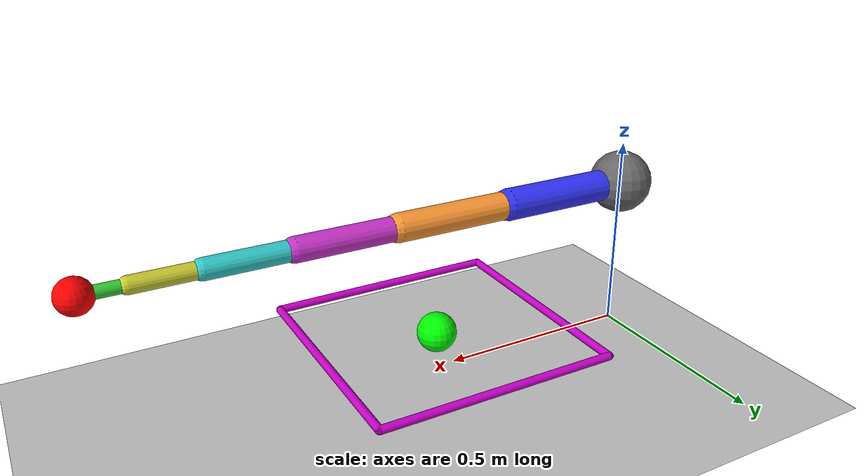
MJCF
<mujoco model="simple_arm">
    <compiler angle="degree"/>

    <option gravity="0 0 0"/>

    <worldbody>
        <light pos="0 0 3"/>

        <geom
            name="floor"
            type="plane"
            size="5 5 0.1"
            rgba="0.8 0.8 0.8 1"
        />

        <!-- Purple rectangle outline marking reachable target area (0.6x0.6 centered at 0.55, 0) -->
        <!-- Bottom edge: X from 0.25 to 0.85, Y=-0.3 -->
        <geom
            name="area_edge_bottom"
            type="capsule"
            fromto="0.25 -0.3 0.1 0.85 -0.3 0.1"
            size="0.01"
            rgba="0.8 0 0.8 1"
            contype="0"
            conaffinity="0"
        />
        <!-- Top edge: X from 0.25 to 0.85, Y=0.3 -->
        <geom
            name="area_edge_top"
            type="capsule"
            fromto="0.25 0.3 0.1 0.85 0.3 0.1"
            size="0.01"
            rgba="0.8 0 0.8 1"
            contype="0"
            conaffinity="0"
        />
        <!-- Left edge: Y from -0.3 to 0.3, X=0.25 -->
        <geom
            name="area_edge_left"
            type="capsule"
            fromto="0.25 -0.3 0.1 0.25 0.3 0.1"
            size="0.01"
            rgba="0.8 0 0.8 1"
            contype="0"
            conaffinity="0"
        />
        <!-- Right edge: Y from -0.3 to 0.3, X=0.85 -->
        <geom
            name="area_edge_right"
            type="capsule"
            fromto="0.85 -0.3 0.1 0.85 0.3 0.1"
            size="0.01"
            rgba="0.8 0 0.8 1"
            contype="0"
            conaffinity="0"
        />

        <!-- Green target marker (free body so it can move) -->
        <body name="target" pos="0.55 0 0.1">
            <joint name="target_free" type="free"/>
            <geom
                name="target_marker"
                type="sphere"
                size="0.05"
                rgba="0 1 0 1"
                contype="0"
                conaffinity="0"
            />
        </body>

        <!-- Robot base -->
        <body name="base" pos="0 0 0.4">
            <geom
                name="base_geom"
                type="sphere"
                size="0.08"
                rgba="0.4 0.4 0.4 1"
            />

            <body name="link1" pos="0 0 0">
                <joint name="joint1" type="hinge" axis="0 0 1"
                       range="-90 90" damping="1.0" armature="0.1"/>
                <geom name="link1_geom" type="capsule"
                      fromto="0 0 0 0.35 0 0" size="0.04"
                      rgba="0.2 0.2 1 1"/>

                <body name="link2" pos="0.35 0 0">
                    <joint name="joint2" type="hinge" axis="0 -1 0"
                           range="-90 90" damping="1.0" armature="0.1"/>
                    <geom name="link2_geom" type="capsule"
                          fromto="0 0 0 0.3 0 0" size="0.035"
                          rgba="1 0.6 0.2 1"/>

                    <body name="link3" pos="0.3 0 0">
                        <joint name="joint3" type="hinge" axis="0 0 1"
                               range="-90 90" damping="0.8" armature="0.1"/>
                        <geom name="link3_geom" type="capsule"
                              fromto="0 0 0 0.25 0 0" size="0.03"
                              rgba="0.8 0.2 0.8 1"/>

                        <body name="link4" pos="0.25 0 0">
                            <joint name="joint4" type="hinge" axis="0 -1 0"
                                   range="-90 90" damping="0.6" armature="0.1"/>
                            <geom name="link4_geom" type="capsule"
                                  fromto="0 0 0 0.2 0 0" size="0.025"
                                  rgba="0.2 0.8 0.8 1"/>

                            <!-- link5 -->
                            <body name="link5" pos="0.2 0 0">
                                <joint name="joint5" type="hinge" axis="0 0 1"
                                       range="-90 90" damping="0.5" armature="0.08"/>
                                <geom name="link5_geom" type="capsule"
                                      fromto="0 0 0 0.15 0 0" size="0.02"
                                      rgba="0.8 0.8 0.2 1"/>

                                <!-- link6 -->
                                <body name="link6" pos="0.15 0 0">
                                    <joint name="joint6" type="hinge" axis="0 -1 0"
                                           range="-90 90" damping="0.4" armature="0.05"/>
                                    <geom name="link6_geom" type="capsule"
                                          fromto="0 0 0 0.1 0 0" size="0.015"
                                          rgba="0.2 0.8 0.2 1"/>

                                    <!-- Red tip -->
                                    <body name="tip" pos="0.1 0 0">
                                        <geom name="tip_geom" type="sphere"
                                              size="0.04" rgba="1 0 0 1"
                                              contype="0" conaffinity="0"/>
                                    </body>
                                </body>
                            </body>
                        </body>
                    </body>
                </body>
            </body>
        </body>
    </worldbody>

    <actuator>
        <motor name="motor1" joint="joint1" gear="10"
               ctrllimited="true" ctrlrange="-1 1"/>
        <motor name="motor2" joint="joint2" gear="6"
               ctrllimited="true" ctrlrange="-1 1"/>
        <motor name="motor3" joint="joint3" gear="4"
               ctrllimited="true" ctrlrange="-1 1"/>
        <motor name="motor4" joint="joint4" gear="3"
               ctrllimited="true" ctrlrange="-1 1"/>
        <motor name="motor5" joint="joint5" gear="2"
               ctrllimited="true" ctrlrange="-1 1"/>
        <motor name="motor6" joint="joint6" gear="1.5"
               ctrllimited="true" ctrlrange="-1 1"/>
    </actuator>
</mujoco>
